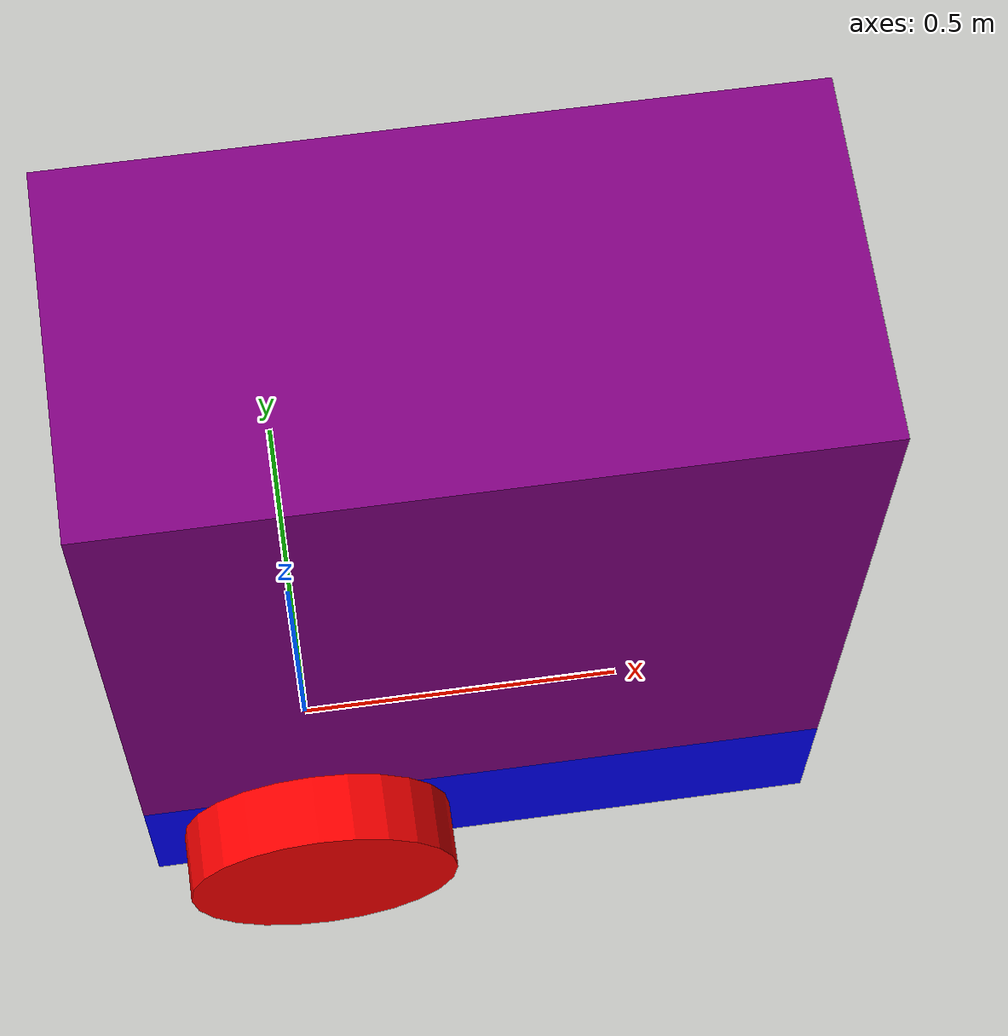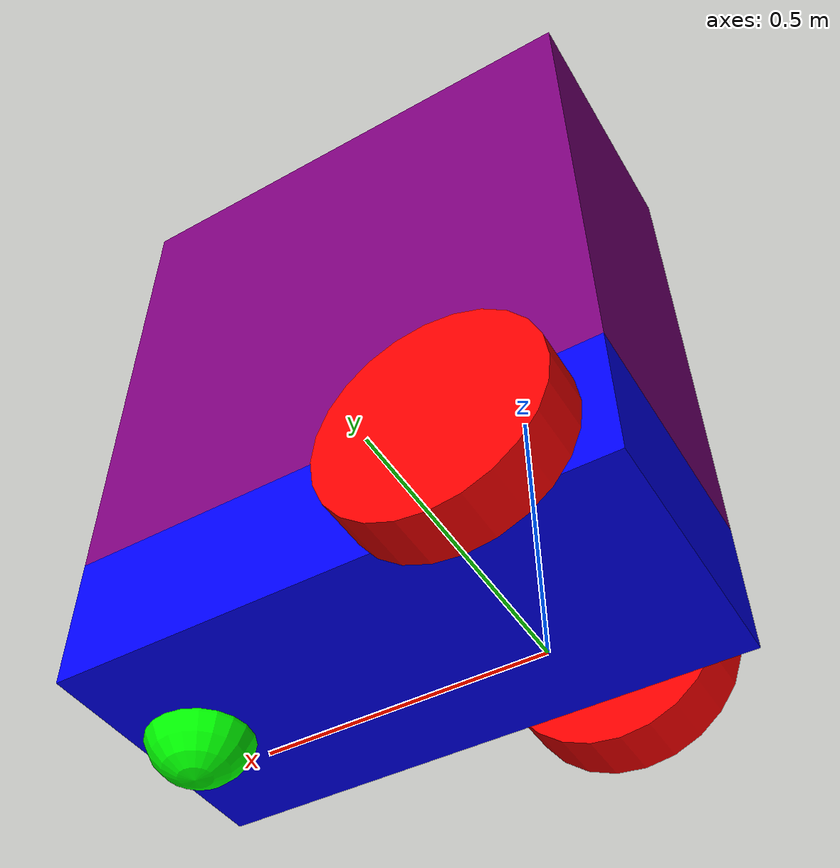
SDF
<?xml version="1.0" ?>
<sdf version="1.9">
    <model name='DummySt' canonical_link='base'>
      <frame name="caster_frame" attached_to='base'>
        <pose>0.4 0 -0.1 0 0 0</pose>  <!-- Adjusted pose -->
      </frame>
      <link name='base'>
        <pose relative_to='__model__'>0.25 0 0.2 0 0 0</pose>   <!-- Adjusted pose -->
        <inertial>
          <mass>2</mass>
          <inertia>
            <ixx>0.0520833</ixx>
            <ixy>0</ixy>
            <ixz>0</ixz>
            <iyy>0.1760417</iyy>
            <iyz>0</iyz>
            <izz>0.2083333</izz>
          </inertia>
        </inertial>
        <visual name='base_visual'>
          <geometry>
            <box>
              <size>1.0 0.5 0.25</size>  <!-- Halved size -->
            </box>
          </geometry>
          <material>
            <ambient>0.0 0.0 1.0 1</ambient>
            <diffuse>0.0 0.0 1.0 1</diffuse>
            <specular>0.0 0.0 1.0 1</specular>
          </material>
        </visual>
        <collision name='collision'>
          <geometry>
            <box>
              <size>1.0 0.5 0.25</size>  <!-- Halved size -->
            </box>
          </geometry>
        </collision>
      </link>

      <link name='payload'>
        <pose relative_to='base'>0 0 0.625 0 0 0</pose>   <!-- Adjusted pose -->
        <inertial>
            <mass>2</mass>
            <inertia>
                <ixx>0.2083</ixx>
                <ixy>0</ixy>
                <ixz>0</ixz>
                <iyy>0.3333</iyy>
                <iyz>0</iyz>
                <izz>0.2083</izz>
            </inertia>
        </inertial>
        <visual name='payload_visual'>
          <geometry>
            <box>
              <size>1.0 0.5 1</size>  <!-- Halved size -->
            </box>
          </geometry>
          <material>
            <ambient>0.5 0.0 0.5 1</ambient>
            <diffuse>0.5 0.0 0.5 1</diffuse>
            <specular>0.5 0.0 0.5 1</specular>
          </material>
        </visual>
        <collision name='collision_payload'>
          <geometry>
            <box>
              <size>1.0 0.5 1</size>  <!-- Halved size -->
            </box>
          </geometry>
        </collision>
      </link>

      <link name='left_wheel'>
        <pose relative_to='base'>-0.25 0.3 0 -1.5707 0 0</pose>  <!-- Adjusted pose -->
        <inertial>
          <mass>2</mass>
          <inertia>
            <ixx>0.01667</ixx>  <!-- Calculated Ix -->
            <ixy>0</ixy>
            <ixz>0</ixz>
            <iyy>0.01667</iyy>  <!-- Calculated Iy -->
            <iyz>0</iyz>
            <izz>0.004</izz>  <!-- Calculated Iz -->
          </inertia>
        </inertial>

        <visual name='visual'>
          <geometry>
            <cylinder>
              <radius>0.2</radius>  <!-- Halved radius -->
              <length>0.1</length>  <!-- Halved length -->
            </cylinder>
          </geometry>
          <material>
            <ambient>1.0 0.0 0.0 1</ambient>
            <diffuse>1.0 0.0 0.0 1</diffuse>
            <specular>1.0 0.0 0.0 1</specular>
          </material>
        </visual>

        <collision name='collision'>
          <geometry>
            <cylinder>
              <radius>0.2</radius>  <!-- Halved radius -->
              <length>0.1</length>  <!-- Halved length -->
            </cylinder>
          </geometry>
        </collision>
      </link>

      <link name='right_wheel'>
        <pose relative_to="base">-0.25 -0.3 0 -1.5707 0 0</pose>  <!-- Adjusted pose -->
        <inertial>
        <mass>2</mass>
        <inertia>
          <ixx>0.01667</ixx>  <!-- Calculated Ix -->
          <ixy>0</ixy>
          <ixz>0</ixz>
          <iyy>0.01667</iyy>  <!-- Calculated Iy -->
          <iyz>0</iyz>
          <izz>0.004</izz>  <!-- Calculated Iz -->
        </inertia>
      </inertial>

        <visual name='visual'>
          <geometry>
            <cylinder>
              <radius>0.2</radius>  <!-- Halved radius -->
              <length>0.1</length>  <!-- Halved length -->
            </cylinder>
          </geometry>
          <material>
            <ambient>1.0 0.0 0.0 1</ambient>
            <diffuse>1.0 0.0 0.0 1</diffuse>
            <specular>1.0 0.0 0.0 1</specular>
          </material>
        </visual>

        <collision name='collision'>
          <geometry>
            <cylinder>
              <radius>0.2</radius>  <!-- Halved radius -->
              <length>0.1</length>  <!-- Halved length -->
            </cylinder>
          </geometry>
        </collision>
      </link>

      <link name='caster'>
        <pose relative_to='caster_frame'/>
        <inertial>
          <mass>2</mass>
          <inertia>
            <ixx>0.004</ixx>
            <ixy>0</ixy>
            <ixz>0</ixz>
            <iyy>0.004</iyy>
            <iyz>0</iyz>
            <izz>0.004</izz>
          </inertia>
        </inertial>

        <visual name='visual'>
            <geometry>
                <sphere>
                    <radius>0.1</radius>  <!-- Halved radius -->
                </sphere>
            </geometry>
            <material>
                <ambient>0.0 1 0.0 1</ambient>
                <diffuse>0.0 1 0.0 1</diffuse>
                <specular>0.0 1 0.0 1</specular>
            </material>
        </visual>

        <collision name='collision'>
            <geometry>
                <sphere>
                    <radius>0.1</radius>  <!-- Halved radius -->
                </sphere>
            </geometry>
        </collision>
      </link>

      <joint name='left_wheel_joint' type='revolute'>
        <parent>base</parent>
        <child>left_wheel</child>
        <axis>
            <xyz expressed_in='__model__'>0 1 0</xyz>
            <limit>
                <lower>-1.79769e+308</lower>
                <upper>1.79769e+308</upper>
            </limit>
        </axis>
      </joint>

      <joint name='right_wheel_joint' type='revolute'>
        <parent>base</parent>
        <child>right_wheel</child>
        <axis>
            <xyz expressed_in='__model__'>0 1 0</xyz>
            <limit>
                <lower>-1.79769e+308</lower>
                <upper>1.79769e+308</upper>
            </limit>
        </axis>
      </joint>

      <joint name='payload_joint' type='fixed'>
        <parent>base</parent>
        <child>payload</child>
      </joint>
      <joint name='caster_wheel' type='ball'>
        <parent>base</parent>
        <child>caster</child>
      </joint>
      <plugin
        filename="libignition-gazebo-diff-drive-system.so"
        name="ignition::gazebo::systems::DiffDrive">
        <left_joint>left_wheel_joint</left_joint>
        <right_joint>right_wheel_joint</right_joint>
        <wheel_separation>0.6</wheel_separation>
        <wheel_radius>0.2</wheel_radius>
        <odom_publish_frequency>0</odom_publish_frequency>
        <topic>cmd_vel_bot</topic>
        <robotBaseFrame>base</robotBaseFrame>
      </plugin>
  </model>
</sdf>
